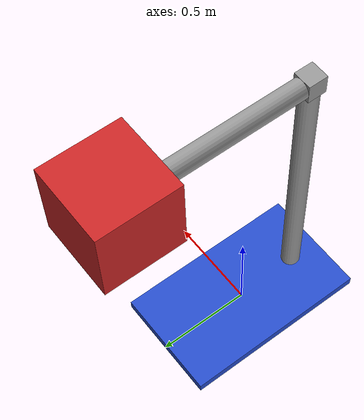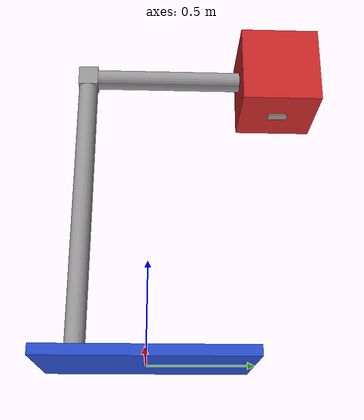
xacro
<?xml version="1.0"?>
<robot name="my_robot" xmlns:xacro="http://www.ros.org/wiki/xacro">

    <xacro:include filename="common_properties1.xacro"/>
    <xacro:include filename="camera_stand.urdf.xacro"/>
    <xacro:include filename="camera_stand_gazebo.xacro"/>
    <xacro:include filename="camera.xacro"/>

</robot>

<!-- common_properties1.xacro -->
<robot xmlns:xacro="http://www.ros.org/wiki/xacro">

    <xacro:macro name="box_inertia" params="m l w h xyz rpy">
        <inertial>
            <origin xyz="${xyz}" rpy="${rpy}" />
            <mass value="${m}" />
            <inertia ixx="${(m/12) * (h*h + l*l)}" ixy="0" ixz="0"
                     iyy="${(m/12) * (w*w + l*l)}" iyz="0"
                     izz="${(m/12) * (w*w + h*h)}" />
        </inertial>
    </xacro:macro>

    <xacro:macro name="cylinder_inertia" params="m r h xyz rpy">
        <inertial>
            <origin xyz="${xyz}" rpy="${rpy}" />
            <mass value="${m}" />
            <inertia ixx="${(m/12) * (3*r*r + h*h)}" ixy="0" ixz="0"
                     iyy="${(m/12) * (3*r*r + h*h)}" iyz="0"
                     izz="${(m/2) * (r*r)}" />
        </inertial>
    </xacro:macro>

    <xacro:macro name="sphere_inertia" params="m r xyz rpy">
        <inertial>
            <origin xyz="${xyz}" rpy="${rpy}" />
            <mass value="${m}" />
            <inertia ixx="${(2/5) * m * r * r}" ixy="0" ixz="0"
                     iyy="${(2/5) * m * r * r}" iyz="0"
                     izz="${(2/5) * m * r * r}" />
        </inertial>
    </xacro:macro>

</robot>

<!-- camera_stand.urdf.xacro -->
<robot xmlns:xacro="http://www.ros.org/wiki/xacro">
    <xacro:include filename="common_properties1.xacro"/>
    <xacro:property name="base_length" value="0.6"/>
    <xacro:property name="base_width" value="1"/>
    <xacro:property name="base_height" value="0.05"/>

    <xacro:property name="neck_radius" value="0.05"/>
    <xacro:property name="neck_length" value="1.4"/>

    <xacro:property name="elbow_size" value="0.1"/>

    <xacro:property name="arm_radius" value="0.05"/>
    <xacro:property name="arm_length" value="0.75"/>

    <xacro:property name="head_size" value="0.4"/>

    <link name="base_footprint"/>

    <joint name="footprint_base_joint" type="fixed">
        <parent link="base_footprint"/>
        <child link="camera_base"/>
        <origin xyz="0 0 0" rpy="0 0 0" />
    </joint>

    <link name="camera_base">
        <visual>
            <geometry>
                <box size="${base_length} ${base_width} ${base_height}" />
            </geometry>
            <origin xyz="0 0 ${base_height/2}" rpy="0 0 0" />
            <material name="blue" />
        </visual>
        <collision>
            <geometry>
                <box size="${base_length} ${base_width} ${base_height}" />
            </geometry>
            <origin xyz="0 0 ${base_height/2}" rpy="0 0 0" />
        </collision>
        <xacro:box_inertia m="5" l="${base_length}" w="${base_width}" h="${base_height}"
                           xyz="0 0 ${base_height/2}" rpy="0 0 0" />
    </link>

     <joint name="base_neck_joint" type="fixed">
        <parent link="camera_base" />
        <child link="camera_neck" />
        <origin xyz="0 ${-base_width/3} ${base_height}" rpy="0 0 0"/>
    </joint>

    <link name="camera_neck">
        <visual>
            <geometry>
                <cylinder radius="${neck_radius}" length="${neck_length}" />
            </geometry>
            <origin xyz="0 0 ${neck_length/2}" rpy="0 0 0" />
            <material name="grey" />
        </visual>
        <collision>
            <geometry>
                <cylinder radius="${neck_radius}" length="${neck_length}" />
            </geometry>
            <origin xyz="0 0 ${neck_length/2}" rpy="0 0 0" />
        </collision>
        <xacro:cylinder_inertia m="0.5" r="${neck_radius}" h="${neck_length}"
                                xyz="0 0 ${neck_length/2}" rpy="0 0 0" />
    </link>

    <joint name="neck_elbow_joint" type="fixed">
        <parent link="camera_neck" />
        <child link="camera_elbow" />
        <origin xyz="0 0 ${neck_length+(elbow_size/2)}" rpy="0 0 0"/>
    </joint>

    <link name="camera_elbow">
        <visual>
            <geometry>
                <box size="${elbow_size} ${elbow_size} ${elbow_size}" />
            </geometry>
            <origin xyz="0 0 0" rpy="0 0 0" />
            <material name="grey" />
        </visual>
        <collision>
            <geometry>
                <box size="${elbow_size} ${elbow_size} ${elbow_size}" />
            </geometry>
            <origin xyz="0 0 0" rpy="0 0 0" />
        </collision>
        <xacro:box_inertia m="10" l="${elbow_size}" w="${elbow_size}" h="${elbow_size}"
                           xyz="0 0 0" rpy="0 0 0"/>
    </link>

    <joint name="elbow_arm_joint" type="fixed">
        <parent link="camera_elbow" />
        <child link="camera_arm" />
        <origin xyz="0 ${arm_radius} 0" rpy="0 0 0"/>
    </joint>

    <link name="camera_arm">
        <visual>
            <geometry>
                <cylinder radius="${arm_radius}" length="${arm_length}" />
            </geometry>
            <origin xyz="0 ${arm_length/2} 0" rpy="${pi/2.0} 0 0" />
            <material name="grey" />
        </visual>
        <collision>
            <geometry>
                <cylinder radius="${arm_radius}" length="${arm_length}" />
            </geometry>
            <origin xyz="0 ${arm_length/2} 0" rpy="${pi/2.0} 0 0" />
        </collision>
        <xacro:cylinder_inertia m="2.0" r="${arm_radius}" h="${arm_length}"
                                xyz="0 ${arm_length/2} 0" rpy="${pi/2.0} 0 0"  />
    </link>

    <joint name="arm_head_joint" type="fixed">
        <parent link="camera_arm" />
        <child link="camera_head" />
        <origin xyz="0 ${arm_length} 0" rpy="0 0 0"/>
    </joint>

    <link name="camera_head">
        <visual>
            <geometry>
                <box size="${head_size} ${head_size} ${head_size}"/>
            </geometry>
            <origin xyz="0 ${head_size/2} 0" rpy="0 0 0" />
            <material name="red" />
        </visual>
        <collision>
            <geometry>
                <box size="${head_size} ${head_size} ${head_size}"/>
            </geometry>
            <origin xyz="0 ${head_size/2} 0" rpy="0 0 0" />
        </collision>
        <xacro:box_inertia m="1" l="${head_size}" w="${head_size}" h="${head_size}"
                           xyz="0 ${head_size/2} 0" rpy="0 0 0"/>
    </link>

</robot>

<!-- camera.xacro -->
<robot xmlns:xacro="http://www.ros.org/wiki/xacro">

    <xacro:property name="camera_length" value="0.01" />
    <xacro:property name="camera_width" value="0.1" />
    <xacro:property name="camera_height" value="0.05" />

    <link name="camera_link">
        <visual>
            <geometry>
                <box size="${camera_length} ${camera_width} ${camera_height}" />
            </geometry>
            <material name="grey" />
        </visual>
        <collision>
            <geometry>
                <box size="${camera_length} ${camera_width} ${camera_height}" />
            </geometry>
        </collision>
        <xacro:box_inertia m="0.1" l="${camera_length}" w="${camera_width}" h="${camera_height}"
                           xyz="0 0 0" rpy="0 0 0" />
    </link>

    <joint name="base_camera_joint" type="fixed">
        <parent link="camera_head" />
        <child link="camera_link" />
        <origin xyz="0 ${head_size/2} ${-head_size / 2.0}" rpy="0 ${pi/2} 0" />
    </joint>

    <link name="camera_link_optical">
    </link>

    <joint name="camera_optical_joint" type="fixed">
        <!-- these values have to be these values otherwise the gazebo camera
            image won't be aligned properly with the frame it is supposedly
            originating from -->
        <origin xyz="0 0 0" rpy="${-pi/2} 0 ${-pi/2}"/>
        <parent link="camera_link"/>
        <child link="camera_link_optical"/>
    </joint>

    <gazebo reference="camera_link">
        <material>Gazebo/Red</material>
        <sensor name="camera_sensor" type="camera">
            <pose>0 0 0 0 0 0</pose>
            <visualize>true</visualize>
            <update_rate>30.0</update_rate> <!-- Increased update rate -->

            <camera name="rgb_cam">
                <pose>0 0 0 0 0 0</pose>
                <horizontal_fov>1.22</horizontal_fov> <!-- Standard FOV for better image capture -->
                <image>
                    <width>1920</width> <!-- Higher resolution -->
                    <height>1080</height> <!-- Higher resolution -->
                    <format>R8G8B8</format>
                </image>
                <clip>
                    <near>0.01</near>
                    <far>100.0</far>
                </clip>
            </camera>

            <plugin name="camera_controller1" filename="libgazebo_ros_camera.so">
                <frame_name>camera_link_optical</frame_name>
            </plugin>
        </sensor>
    </gazebo>

</robot>
